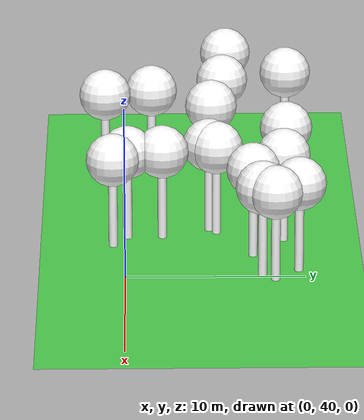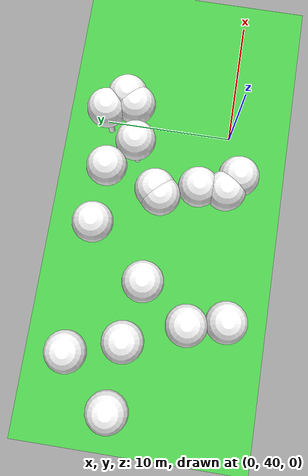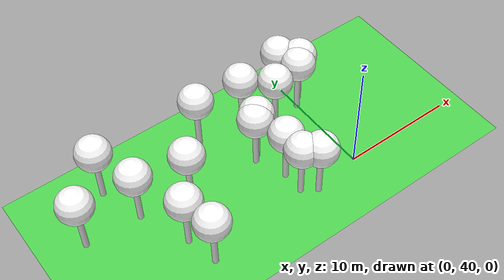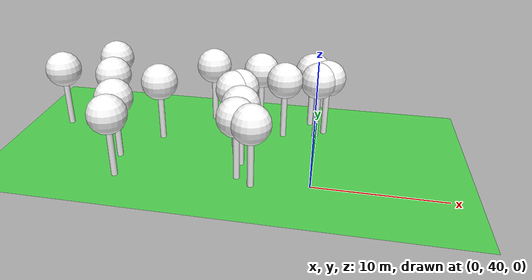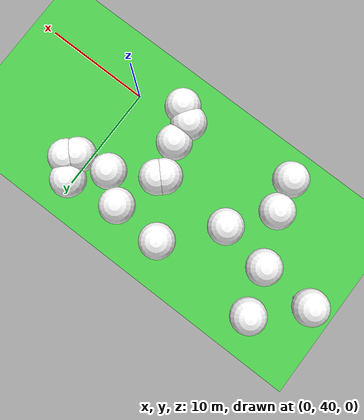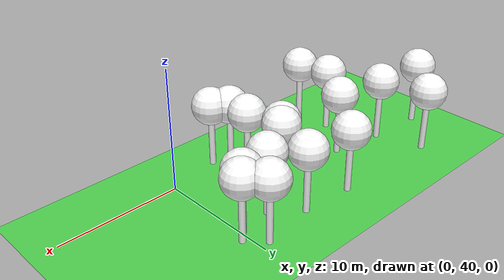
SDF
<sdf version="1.8">
 <world name="forest_world">
  <model name="tree_simple483">
   <static>1</static>
   <link name="link">
    <pose>0 0 0.1 0 -0 0</pose>
    <collision name="collision_trunk">
     <pose>0 0 2 0 -0 0</pose>
     <geometry><cylinder><radius>0.25</radius><length>4</length></cylinder></geometry>
    </collision>
    <collision name="collision_treetop">
     <pose>0 0 5.2 0 -0 0</pose>
     <geometry><sphere><radius>1.5</radius></sphere></geometry>
    </collision>
    <visual name="trunk_483">
     <pose>0 0 2 0 -0 0</pose>
     <geometry><cylinder><radius>0.25</radius><length>4</length></cylinder></geometry>
     <material>
      <ambient>0.5 0.5 0.5 1</ambient>
      <diffuse>1.0 1.0 1.0 1</diffuse>
      <specular>0.0 0.0 0.0 1</specular>
      <pbr>
       <metal>
        <albedo_map>file://textures/tree_simple_trunk.jpg</albedo_map>
        <metalness>0.0</metalness>
        <roughness>0.8</roughness>
       </metal>
      </pbr>
     </material>
    </visual>
    <visual name="treetop_483">
     <pose>0 0 5.2 0 -0 0</pose>
     <geometry><sphere><radius>1.5</radius></sphere></geometry>
     <material>
      <ambient>0.5 0.5 0.5 1</ambient>
      <diffuse>1.0 1.0 1.0 1</diffuse>
      <specular>0.0 0.0 0.0 1</specular>
      <pbr>
       <metal>
        <albedo_map>file://textures/tree_simple_treetop.jpg</albedo_map>
        <metalness>0.0</metalness>
        <roughness>0.9</roughness>
       </metal>
      </pbr>
     </material>
    </visual>
   </link>
   <pose>-6.65162129766 44.7613363002 0 0 -0 0</pose>
  </model>
  <model name="tree_simple446">
   <static>1</static>
   <link name="link">
    <pose>0 0 0.1 0 -0 0</pose>
    <collision name="collision_trunk">
     <pose>0 0 2 0 -0 0</pose>
     <geometry><cylinder><radius>0.25</radius><length>4</length></cylinder></geometry>
    </collision>
    <collision name="collision_treetop">
     <pose>0 0 5.2 0 -0 0</pose>
     <geometry><sphere><radius>1.5</radius></sphere></geometry>
    </collision>
    <visual name="trunk_446">
     <pose>0 0 2 0 -0 0</pose>
     <geometry><cylinder><radius>0.25</radius><length>4</length></cylinder></geometry>
     <material>
      <ambient>0.5 0.5 0.5 1</ambient>
      <diffuse>1.0 1.0 1.0 1</diffuse>
      <specular>0.0 0.0 0.0 1</specular>
      <pbr>
       <metal>
        <albedo_map>file://textures/tree_simple_trunk.jpg</albedo_map>
        <metalness>0.0</metalness>
        <roughness>0.8</roughness>
       </metal>
      </pbr>
     </material>
    </visual>
    <visual name="treetop_446">
     <pose>0 0 5.2 0 -0 0</pose>
     <geometry><sphere><radius>1.5</radius></sphere></geometry>
     <material>
      <ambient>0.5 0.5 0.5 1</ambient>
      <diffuse>1.0 1.0 1.0 1</diffuse>
      <specular>0.0 0.0 0.0 1</specular>
      <pbr>
       <metal>
        <albedo_map>file://textures/tree_simple_treetop.jpg</albedo_map>
        <metalness>0.0</metalness>
        <roughness>0.9</roughness>
       </metal>
      </pbr>
     </material>
    </visual>
   </link>
   <pose>-14.8873591434 38.8088683427 0 0 -0 0</pose>
  </model>
  <model name="tree_simple436">
   <static>1</static>
   <link name="link">
    <pose>0 0 0.1 0 -0 0</pose>
    <collision name="collision_trunk">
     <pose>0 0 2 0 -0 0</pose>
     <geometry><cylinder><radius>0.25</radius><length>4</length></cylinder></geometry>
    </collision>
    <collision name="collision_treetop">
     <pose>0 0 5.2 0 -0 0</pose>
     <geometry><sphere><radius>1.5</radius></sphere></geometry>
    </collision>
    <visual name="trunk_436">
     <pose>0 0 2 0 -0 0</pose>
     <geometry><cylinder><radius>0.25</radius><length>4</length></cylinder></geometry>
     <material>
      <ambient>0.5 0.5 0.5 1</ambient>
      <diffuse>1.0 1.0 1.0 1</diffuse>
      <specular>0.0 0.0 0.0 1</specular>
      <pbr>
       <metal>
        <albedo_map>file://textures/tree_simple_trunk.jpg</albedo_map>
        <metalness>0.0</metalness>
        <roughness>0.8</roughness>
       </metal>
      </pbr>
     </material>
    </visual>
    <visual name="treetop_436">
     <pose>0 0 5.2 0 -0 0</pose>
     <geometry><sphere><radius>1.5</radius></sphere></geometry>
     <material>
      <ambient>0.5 0.5 0.5 1</ambient>
      <diffuse>1.0 1.0 1.0 1</diffuse>
      <specular>0.0 0.0 0.0 1</specular>
      <pbr>
       <metal>
        <albedo_map>file://textures/tree_simple_treetop.jpg</albedo_map>
        <metalness>0.0</metalness>
        <roughness>0.9</roughness>
       </metal>
      </pbr>
     </material>
    </visual>
   </link>
   <pose>-12.9773602363 44.9895309953 0 0 -0 0</pose>
  </model>
  <model name="tree_simple356">
   <static>1</static>
   <link name="link">
    <pose>0 0 0.1 0 -0 0</pose>
    <collision name="collision_trunk">
     <pose>0 0 2 0 -0 0</pose>
     <geometry><cylinder><radius>0.25</radius><length>4</length></cylinder></geometry>
    </collision>
    <collision name="collision_treetop">
     <pose>0 0 5.2 0 -0 0</pose>
     <geometry><sphere><radius>1.5</radius></sphere></geometry>
    </collision>
    <visual name="trunk_356">
     <pose>0 0 2 0 -0 0</pose>
     <geometry><cylinder><radius>0.25</radius><length>4</length></cylinder></geometry>
     <material>
      <ambient>0.5 0.5 0.5 1</ambient>
      <diffuse>1.0 1.0 1.0 1</diffuse>
      <specular>0.0 0.0 0.0 1</specular>
      <pbr>
       <metal>
        <albedo_map>file://textures/tree_simple_trunk.jpg</albedo_map>
        <metalness>0.0</metalness>
        <roughness>0.8</roughness>
       </metal>
      </pbr>
     </material>
    </visual>
    <visual name="treetop_356">
     <pose>0 0 5.2 0 -0 0</pose>
     <geometry><sphere><radius>1.5</radius></sphere></geometry>
     <material>
      <ambient>0.5 0.5 0.5 1</ambient>
      <diffuse>1.0 1.0 1.0 1</diffuse>
      <specular>0.0 0.0 0.0 1</specular>
      <pbr>
       <metal>
        <albedo_map>file://textures/tree_simple_treetop.jpg</albedo_map>
        <metalness>0.0</metalness>
        <roughness>0.9</roughness>
       </metal>
      </pbr>
     </material>
    </visual>
   </link>
   <pose>-2.83030100633 47.164879459 0 0 -0 0</pose>
  </model>
  <model name="tree_simple343">
   <static>1</static>
   <link name="link">
    <pose>0 0 0.1 0 -0 0</pose>
    <collision name="collision_trunk">
     <pose>0 0 2 0 -0 0</pose>
     <geometry><cylinder><radius>0.25</radius><length>4</length></cylinder></geometry>
    </collision>
    <collision name="collision_treetop">
     <pose>0 0 5.2 0 -0 0</pose>
     <geometry><sphere><radius>1.5</radius></sphere></geometry>
    </collision>
    <visual name="trunk_343">
     <pose>0 0 2 0 -0 0</pose>
     <geometry><cylinder><radius>0.25</radius><length>4</length></cylinder></geometry>
     <material>
      <ambient>0.5 0.5 0.5 1</ambient>
      <diffuse>1.0 1.0 1.0 1</diffuse>
      <specular>0.0 0.0 0.0 1</specular>
      <pbr>
       <metal>
        <albedo_map>file://textures/tree_simple_trunk.jpg</albedo_map>
        <metalness>0.0</metalness>
        <roughness>0.8</roughness>
       </metal>
      </pbr>
     </material>
    </visual>
    <visual name="treetop_343">
     <pose>0 0 5.2 0 -0 0</pose>
     <geometry><sphere><radius>1.5</radius></sphere></geometry>
     <material>
      <ambient>0.5 0.5 0.5 1</ambient>
      <diffuse>1.0 1.0 1.0 1</diffuse>
      <specular>0.0 0.0 0.0 1</specular>
      <pbr>
       <metal>
        <albedo_map>file://textures/tree_simple_treetop.jpg</albedo_map>
        <metalness>0.0</metalness>
        <roughness>0.9</roughness>
       </metal>
      </pbr>
     </material>
    </visual>
   </link>
   <pose>-17.2958932822 45.7138384605 0 0 -0 0</pose>
  </model>
  <model name="tree_simple342">
   <static>1</static>
   <link name="link">
    <pose>0 0 0.1 0 -0 0</pose>
    <collision name="collision_trunk">
     <pose>0 0 2 0 -0 0</pose>
     <geometry><cylinder><radius>0.25</radius><length>4</length></cylinder></geometry>
    </collision>
    <collision name="collision_treetop">
     <pose>0 0 5.2 0 -0 0</pose>
     <geometry><sphere><radius>1.5</radius></sphere></geometry>
    </collision>
    <visual name="trunk_342">
     <pose>0 0 2 0 -0 0</pose>
     <geometry><cylinder><radius>0.25</radius><length>4</length></cylinder></geometry>
     <material>
      <ambient>0.5 0.5 0.5 1</ambient>
      <diffuse>1.0 1.0 1.0 1</diffuse>
      <specular>0.0 0.0 0.0 1</specular>
      <pbr>
       <metal>
        <albedo_map>file://textures/tree_simple_trunk.jpg</albedo_map>
        <metalness>0.0</metalness>
        <roughness>0.8</roughness>
       </metal>
      </pbr>
     </material>
    </visual>
    <visual name="treetop_342">
     <pose>0 0 5.2 0 -0 0</pose>
     <geometry><sphere><radius>1.5</radius></sphere></geometry>
     <material>
      <ambient>0.5 0.5 0.5 1</ambient>
      <diffuse>1.0 1.0 1.0 1</diffuse>
      <specular>0.0 0.0 0.0 1</specular>
      <pbr>
       <metal>
        <albedo_map>file://textures/tree_simple_treetop.jpg</albedo_map>
        <metalness>0.0</metalness>
        <roughness>0.9</roughness>
       </metal>
      </pbr>
     </material>
    </visual>
   </link>
   <pose>-22.0369501139 46.0033918911 0 0 -0 0</pose>
  </model>
  <model name="tree_simple302">
   <static>1</static>
   <link name="link">
    <pose>0 0 0.1 0 -0 0</pose>
    <collision name="collision_trunk">
     <pose>0 0 2 0 -0 0</pose>
     <geometry><cylinder><radius>0.25</radius><length>4</length></cylinder></geometry>
    </collision>
    <collision name="collision_treetop">
     <pose>0 0 5.2 0 -0 0</pose>
     <geometry><sphere><radius>1.5</radius></sphere></geometry>
    </collision>
    <visual name="trunk_302">
     <pose>0 0 2 0 -0 0</pose>
     <geometry><cylinder><radius>0.25</radius><length>4</length></cylinder></geometry>
     <material>
      <ambient>0.5 0.5 0.5 1</ambient>
      <diffuse>1.0 1.0 1.0 1</diffuse>
      <specular>0.0 0.0 0.0 1</specular>
      <pbr>
       <metal>
        <albedo_map>file://textures/tree_simple_trunk.jpg</albedo_map>
        <metalness>0.0</metalness>
        <roughness>0.8</roughness>
       </metal>
      </pbr>
     </material>
    </visual>
    <visual name="treetop_302">
     <pose>0 0 5.2 0 -0 0</pose>
     <geometry><sphere><radius>1.5</radius></sphere></geometry>
     <material>
      <ambient>0.5 0.5 0.5 1</ambient>
      <diffuse>1.0 1.0 1.0 1</diffuse>
      <specular>0.0 0.0 0.0 1</specular>
      <pbr>
       <metal>
        <albedo_map>file://textures/tree_simple_treetop.jpg</albedo_map>
        <metalness>0.0</metalness>
        <roughness>0.9</roughness>
       </metal>
      </pbr>
     </material>
    </visual>
   </link>
   <pose>-4.36833306423 39.3035065939 0 0 -0 0</pose>
  </model>
  <model name="tree_simple273">
   <static>1</static>
   <link name="link">
    <pose>0 0 0.1 0 -0 0</pose>
    <collision name="collision_trunk">
     <pose>0 0 2 0 -0 0</pose>
     <geometry><cylinder><radius>0.25</radius><length>4</length></cylinder></geometry>
    </collision>
    <collision name="collision_treetop">
     <pose>0 0 5.2 0 -0 0</pose>
     <geometry><sphere><radius>1.5</radius></sphere></geometry>
    </collision>
    <visual name="trunk_273">
     <pose>0 0 2 0 -0 0</pose>
     <geometry><cylinder><radius>0.25</radius><length>4</length></cylinder></geometry>
     <material>
      <ambient>0.5 0.5 0.5 1</ambient>
      <diffuse>1.0 1.0 1.0 1</diffuse>
      <specular>0.0 0.0 0.0 1</specular>
      <pbr>
       <metal>
        <albedo_map>file://textures/tree_simple_trunk.jpg</albedo_map>
        <metalness>0.0</metalness>
        <roughness>0.8</roughness>
       </metal>
      </pbr>
     </material>
    </visual>
    <visual name="treetop_273">
     <pose>0 0 5.2 0 -0 0</pose>
     <geometry><sphere><radius>1.5</radius></sphere></geometry>
     <material>
      <ambient>0.5 0.5 0.5 1</ambient>
      <diffuse>1.0 1.0 1.0 1</diffuse>
      <specular>0.0 0.0 0.0 1</specular>
      <pbr>
       <metal>
        <albedo_map>file://textures/tree_simple_treetop.jpg</albedo_map>
        <metalness>0.0</metalness>
        <roughness>0.9</roughness>
       </metal>
      </pbr>
     </material>
    </visual>
   </link>
   <pose>0.615452914857 48.3188405116 0 0 -0 0</pose>
  </model>
  <model name="tree_simple271">
   <static>1</static>
   <link name="link">
    <pose>0 0 0.1 0 -0 0</pose>
    <collision name="collision_trunk">
     <pose>0 0 2 0 -0 0</pose>
     <geometry><cylinder><radius>0.25</radius><length>4</length></cylinder></geometry>
    </collision>
    <collision name="collision_treetop">
     <pose>0 0 5.2 0 -0 0</pose>
     <geometry><sphere><radius>1.5</radius></sphere></geometry>
    </collision>
    <visual name="trunk_271">
     <pose>0 0 2 0 -0 0</pose>
     <geometry><cylinder><radius>0.25</radius><length>4</length></cylinder></geometry>
     <material>
      <ambient>0.5 0.5 0.5 1</ambient>
      <diffuse>1.0 1.0 1.0 1</diffuse>
      <specular>0.0 0.0 0.0 1</specular>
      <pbr>
       <metal>
        <albedo_map>file://textures/tree_simple_trunk.jpg</albedo_map>
        <metalness>0.0</metalness>
        <roughness>0.8</roughness>
       </metal>
      </pbr>
     </material>
    </visual>
    <visual name="treetop_271">
     <pose>0 0 5.2 0 -0 0</pose>
     <geometry><sphere><radius>1.5</radius></sphere></geometry>
     <material>
      <ambient>0.5 0.5 0.5 1</ambient>
      <diffuse>1.0 1.0 1.0 1</diffuse>
      <specular>0.0 0.0 0.0 1</specular>
      <pbr>
       <metal>
        <albedo_map>file://textures/tree_simple_treetop.jpg</albedo_map>
        <metalness>0.0</metalness>
        <roughness>0.9</roughness>
       </metal>
      </pbr>
     </material>
    </visual>
   </link>
   <pose>-18.5426783436 49.4999190652 0 0 -0 0</pose>
  </model>
  <model name="tree_simple248">
   <static>1</static>
   <link name="link">
    <pose>0 0 0.1 0 -0 0</pose>
    <collision name="collision_trunk">
     <pose>0 0 2 0 -0 0</pose>
     <geometry><cylinder><radius>0.25</radius><length>4</length></cylinder></geometry>
    </collision>
    <collision name="collision_treetop">
     <pose>0 0 5.2 0 -0 0</pose>
     <geometry><sphere><radius>1.5</radius></sphere></geometry>
    </collision>
    <visual name="trunk_248">
     <pose>0 0 2 0 -0 0</pose>
     <geometry><cylinder><radius>0.25</radius><length>4</length></cylinder></geometry>
     <material>
      <ambient>0.5 0.5 0.5 1</ambient>
      <diffuse>1.0 1.0 1.0 1</diffuse>
      <specular>0.0 0.0 0.0 1</specular>
      <pbr>
       <metal>
        <albedo_map>file://textures/tree_simple_trunk.jpg</albedo_map>
        <metalness>0.0</metalness>
        <roughness>0.8</roughness>
       </metal>
      </pbr>
     </material>
    </visual>
    <visual name="treetop_248">
     <pose>0 0 5.2 0 -0 0</pose>
     <geometry><sphere><radius>1.5</radius></sphere></geometry>
     <material>
      <ambient>0.5 0.5 0.5 1</ambient>
      <diffuse>1.0 1.0 1.0 1</diffuse>
      <specular>0.0 0.0 0.0 1</specular>
      <pbr>
       <metal>
        <albedo_map>file://textures/tree_simple_treetop.jpg</albedo_map>
        <metalness>0.0</metalness>
        <roughness>0.9</roughness>
       </metal>
      </pbr>
     </material>
    </visual>
   </link>
   <pose>-9.31615496508 49.2286778513 0 0 -0 0</pose>
  </model>
  <model name="tree_simple213">
   <static>1</static>
   <link name="link">
    <pose>0 0 0.1 0 -0 0</pose>
    <collision name="collision_trunk">
     <pose>0 0 2 0 -0 0</pose>
     <geometry><cylinder><radius>0.25</radius><length>4</length></cylinder></geometry>
    </collision>
    <collision name="collision_treetop">
     <pose>0 0 5.2 0 -0 0</pose>
     <geometry><sphere><radius>1.5</radius></sphere></geometry>
    </collision>
    <visual name="trunk_213">
     <pose>0 0 2 0 -0 0</pose>
     <geometry><cylinder><radius>0.25</radius><length>4</length></cylinder></geometry>
     <material>
      <ambient>0.5 0.5 0.5 1</ambient>
      <diffuse>1.0 1.0 1.0 1</diffuse>
      <specular>0.0 0.0 0.0 1</specular>
      <pbr>
       <metal>
        <albedo_map>file://textures/tree_simple_trunk.jpg</albedo_map>
        <metalness>0.0</metalness>
        <roughness>0.8</roughness>
       </metal>
      </pbr>
     </material>
    </visual>
    <visual name="treetop_213">
     <pose>0 0 5.2 0 -0 0</pose>
     <geometry><sphere><radius>1.5</radius></sphere></geometry>
     <material>
      <ambient>0.5 0.5 0.5 1</ambient>
      <diffuse>1.0 1.0 1.0 1</diffuse>
      <specular>0.0 0.0 0.0 1</specular>
      <pbr>
       <metal>
        <albedo_map>file://textures/tree_simple_treetop.jpg</albedo_map>
        <metalness>0.0</metalness>
        <roughness>0.9</roughness>
       </metal>
      </pbr>
     </material>
    </visual>
   </link>
   <pose>-6.21217405129 45.1783482454 0 0 -0 0</pose>
  </model>
  <model name="tree_simple184">
   <static>1</static>
   <link name="link">
    <pose>0 0 0.1 0 -0 0</pose>
    <collision name="collision_trunk">
     <pose>0 0 2 0 -0 0</pose>
     <geometry><cylinder><radius>0.25</radius><length>4</length></cylinder></geometry>
    </collision>
    <collision name="collision_treetop">
     <pose>0 0 5.2 0 -0 0</pose>
     <geometry><sphere><radius>1.5</radius></sphere></geometry>
    </collision>
    <visual name="trunk_184">
     <pose>0 0 2 0 -0 0</pose>
     <geometry><cylinder><radius>0.25</radius><length>4</length></cylinder></geometry>
     <material>
      <ambient>0.5 0.5 0.5 1</ambient>
      <diffuse>1.0 1.0 1.0 1</diffuse>
      <specular>0.0 0.0 0.0 1</specular>
      <pbr>
       <metal>
        <albedo_map>file://textures/tree_simple_trunk.jpg</albedo_map>
        <metalness>0.0</metalness>
        <roughness>0.8</roughness>
       </metal>
      </pbr>
     </material>
    </visual>
    <visual name="treetop_184">
     <pose>0 0 5.2 0 -0 0</pose>
     <geometry><sphere><radius>1.5</radius></sphere></geometry>
     <material>
      <ambient>0.5 0.5 0.5 1</ambient>
      <diffuse>1.0 1.0 1.0 1</diffuse>
      <specular>0.0 0.0 0.0 1</specular>
      <pbr>
       <metal>
        <albedo_map>file://textures/tree_simple_treetop.jpg</albedo_map>
        <metalness>0.0</metalness>
        <roughness>0.9</roughness>
       </metal>
      </pbr>
     </material>
    </visual>
   </link>
   <pose>-0.656302905273 49.6633789535 0 0 -0 0</pose>
  </model>
  <model name="tree_simple161">
   <static>1</static>
   <link name="link">
    <pose>0 0 0.1 0 -0 0</pose>
    <collision name="collision_trunk">
     <pose>0 0 2 0 -0 0</pose>
     <geometry><cylinder><radius>0.25</radius><length>4</length></cylinder></geometry>
    </collision>
    <collision name="collision_treetop">
     <pose>0 0 5.2 0 -0 0</pose>
     <geometry><sphere><radius>1.5</radius></sphere></geometry>
    </collision>
    <visual name="trunk_161">
     <pose>0 0 2 0 -0 0</pose>
     <geometry><cylinder><radius>0.25</radius><length>4</length></cylinder></geometry>
     <material>
      <ambient>0.5 0.5 0.5 1</ambient>
      <diffuse>1.0 1.0 1.0 1</diffuse>
      <specular>0.0 0.0 0.0 1</specular>
      <pbr>
       <metal>
        <albedo_map>file://textures/tree_simple_trunk.jpg</albedo_map>
        <metalness>0.0</metalness>
        <roughness>0.8</roughness>
       </metal>
      </pbr>
     </material>
    </visual>
    <visual name="treetop_161">
     <pose>0 0 5.2 0 -0 0</pose>
     <geometry><sphere><radius>1.5</radius></sphere></geometry>
     <material>
      <ambient>0.5 0.5 0.5 1</ambient>
      <diffuse>1.0 1.0 1.0 1</diffuse>
      <specular>0.0 0.0 0.0 1</specular>
      <pbr>
       <metal>
        <albedo_map>file://textures/tree_simple_treetop.jpg</albedo_map>
        <metalness>0.0</metalness>
        <roughness>0.9</roughness>
       </metal>
      </pbr>
     </material>
    </visual>
   </link>
   <pose>-5.06082538739 48.9463602033 0 0 -0 0</pose>
  </model>
  <model name="tree_simple134">
   <static>1</static>
   <link name="link">
    <pose>0 0 0.1 0 -0 0</pose>
    <collision name="collision_trunk">
     <pose>0 0 2 0 -0 0</pose>
     <geometry><cylinder><radius>0.25</radius><length>4</length></cylinder></geometry>
    </collision>
    <collision name="collision_treetop">
     <pose>0 0 5.2 0 -0 0</pose>
     <geometry><sphere><radius>1.5</radius></sphere></geometry>
    </collision>
    <visual name="trunk_134">
     <pose>0 0 2 0 -0 0</pose>
     <geometry><cylinder><radius>0.25</radius><length>4</length></cylinder></geometry>
     <material>
      <ambient>0.5 0.5 0.5 1</ambient>
      <diffuse>1.0 1.0 1.0 1</diffuse>
      <specular>0.0 0.0 0.0 1</specular>
      <pbr>
       <metal>
        <albedo_map>file://textures/tree_simple_trunk.jpg</albedo_map>
        <metalness>0.0</metalness>
        <roughness>0.8</roughness>
       </metal>
      </pbr>
     </material>
    </visual>
    <visual name="treetop_134">
     <pose>0 0 5.2 0 -0 0</pose>
     <geometry><sphere><radius>1.5</radius></sphere></geometry>
     <material>
      <ambient>0.5 0.5 0.5 1</ambient>
      <diffuse>1.0 1.0 1.0 1</diffuse>
      <specular>0.0 0.0 0.0 1</specular>
      <pbr>
       <metal>
        <albedo_map>file://textures/tree_simple_treetop.jpg</albedo_map>
        <metalness>0.0</metalness>
        <roughness>0.9</roughness>
       </metal>
      </pbr>
     </material>
    </visual>
   </link>
   <pose>-15.5112177362 41.52540577 0 0 -0 0</pose>
  </model>
  <model name="tree_simple92">
   <static>1</static>
   <link name="link">
    <pose>0 0 0.1 0 -0 0</pose>
    <collision name="collision_trunk">
     <pose>0 0 2 0 -0 0</pose>
     <geometry><cylinder><radius>0.25</radius><length>4</length></cylinder></geometry>
    </collision>
    <collision name="collision_treetop">
     <pose>0 0 5.2 0 -0 0</pose>
     <geometry><sphere><radius>1.5</radius></sphere></geometry>
    </collision>
    <visual name="trunk_92">
     <pose>0 0 2 0 -0 0</pose>
     <geometry><cylinder><radius>0.25</radius><length>4</length></cylinder></geometry>
     <material>
      <ambient>0.5 0.5 0.5 1</ambient>
      <diffuse>1.0 1.0 1.0 1</diffuse>
      <specular>0.0 0.0 0.0 1</specular>
      <pbr>
       <metal>
        <albedo_map>file://textures/tree_simple_trunk.jpg</albedo_map>
        <metalness>0.0</metalness>
        <roughness>0.8</roughness>
       </metal>
      </pbr>
     </material>
    </visual>
    <visual name="treetop_92">
     <pose>0 0 5.2 0 -0 0</pose>
     <geometry><sphere><radius>1.5</radius></sphere></geometry>
     <material>
      <ambient>0.5 0.5 0.5 1</ambient>
      <diffuse>1.0 1.0 1.0 1</diffuse>
      <specular>0.0 0.0 0.0 1</specular>
      <pbr>
       <metal>
        <albedo_map>file://textures/tree_simple_treetop.jpg</albedo_map>
        <metalness>0.0</metalness>
        <roughness>0.9</roughness>
       </metal>
      </pbr>
     </material>
    </visual>
   </link>
   <pose>-5.60936243571 42.0879357929 0 0 -0 0</pose>
  </model>
  <model name="tree_simple59">
   <static>1</static>
   <link name="link">
    <pose>0 0 0.1 0 -0 0</pose>
    <collision name="collision_trunk">
     <pose>0 0 2 0 -0 0</pose>
     <geometry><cylinder><radius>0.25</radius><length>4</length></cylinder></geometry>
    </collision>
    <collision name="collision_treetop">
     <pose>0 0 5.2 0 -0 0</pose>
     <geometry><sphere><radius>1.5</radius></sphere></geometry>
    </collision>
    <visual name="trunk_59">
     <pose>0 0 2 0 -0 0</pose>
     <geometry><cylinder><radius>0.25</radius><length>4</length></cylinder></geometry>
     <material>
      <ambient>0.5 0.5 0.5 1</ambient>
      <diffuse>1.0 1.0 1.0 1</diffuse>
      <specular>0.0 0.0 0.0 1</specular>
      <pbr>
       <metal>
        <albedo_map>file://textures/tree_simple_trunk.jpg</albedo_map>
        <metalness>0.0</metalness>
        <roughness>0.8</roughness>
       </metal>
      </pbr>
     </material>
    </visual>
    <visual name="treetop_59">
     <pose>0 0 5.2 0 -0 0</pose>
     <geometry><sphere><radius>1.5</radius></sphere></geometry>
     <material>
      <ambient>0.5 0.5 0.5 1</ambient>
      <diffuse>1.0 1.0 1.0 1</diffuse>
      <specular>0.0 0.0 0.0 1</specular>
      <pbr>
       <metal>
        <albedo_map>file://textures/tree_simple_treetop.jpg</albedo_map>
        <metalness>0.0</metalness>
        <roughness>0.9</roughness>
       </metal>
      </pbr>
     </material>
    </visual>
   </link>
   <pose>-5.58238375985 40.1230579817 0 0 -0 0</pose>
  </model>
  <model name="tree_simple8">
   <static>1</static>
   <link name="link">
    <pose>0 0 0.1 0 -0 0</pose>
    <collision name="collision_trunk">
     <pose>0 0 2 0 -0 0</pose>
     <geometry><cylinder><radius>0.25</radius><length>4</length></cylinder></geometry>
    </collision>
    <collision name="collision_treetop">
     <pose>0 0 5.2 0 -0 0</pose>
     <geometry><sphere><radius>1.5</radius></sphere></geometry>
    </collision>
    <visual name="trunk_8">
     <pose>0 0 2 0 -0 0</pose>
     <geometry><cylinder><radius>0.25</radius><length>4</length></cylinder></geometry>
     <material>
      <ambient>0.5 0.5 0.5 1</ambient>
      <diffuse>1.0 1.0 1.0 1</diffuse>
      <specular>0.0 0.0 0.0 1</specular>
      <pbr>
       <metal>
        <albedo_map>file://textures/tree_simple_trunk.jpg</albedo_map>
        <metalness>0.0</metalness>
        <roughness>0.8</roughness>
       </metal>
      </pbr>
     </material>
    </visual>
    <visual name="treetop_8">
     <pose>0 0 5.2 0 -0 0</pose>
     <geometry><sphere><radius>1.5</radius></sphere></geometry>
     <material>
      <ambient>0.5 0.5 0.5 1</ambient>
      <diffuse>1.0 1.0 1.0 1</diffuse>
      <specular>0.0 0.0 0.0 1</specular>
      <pbr>
       <metal>
        <albedo_map>file://textures/tree_simple_treetop.jpg</albedo_map>
        <metalness>0.0</metalness>
        <roughness>0.9</roughness>
       </metal>
      </pbr>
     </material>
    </visual>
   </link>
   <pose>-0.0806876510323 47.6134799774 0 0 -0 0</pose>
  </model>
  <model name="ground_plane">
   <static>true</static>
   <link name="link">
    <collision name="collision">
     <geometry><plane><normal>0 0 1</normal><size>250 250</size></plane></geometry>
     <surface><friction><ode><mu>1</mu><mu2>1</mu2></ode></friction></surface>
    </collision>
    <visual name="grass">
     <cast_shadows>false</cast_shadows>
     <geometry><mesh><uri>file://textures/grass_plane.dae</uri><scale>1 1 1</scale></mesh></geometry>
     <material>
      <ambient>0.2 0.6 0.2 1</ambient>
      <diffuse>0.3 0.8 0.3 1</diffuse>
      <specular>0.1 0.1 0.1 1</specular>
      <pbr>
       <metal>
        <albedo_map>file://textures/grass_seamless.jpg</albedo_map>
        <metalness>0.0</metalness>
        <roughness>0.9</roughness>
       </metal>
      </pbr>
     </material>
    </visual>
   </link>
  </model>
 </world>
</sdf>
